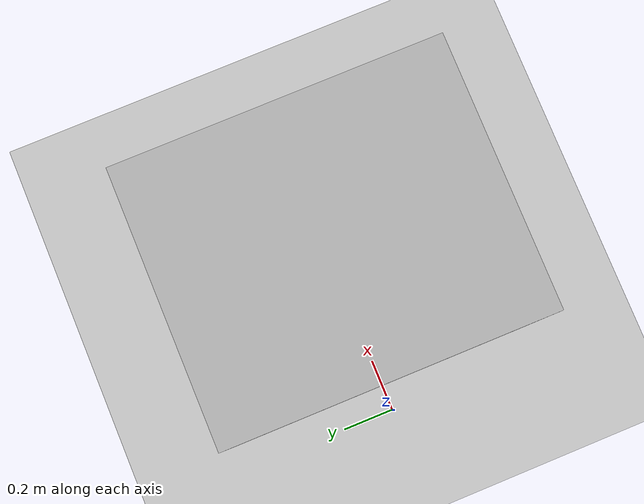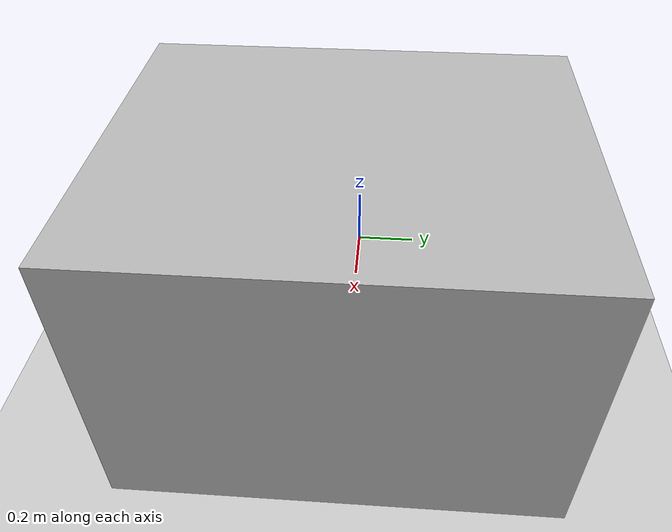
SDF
<?xml version="1.0" ?>
<sdf version="1.6">
  <world name="lab_world">

    <include>
      <uri>model://ground_plane</uri>
    </include>

    <model name="initial_stand">
      <static>true</static>
      <link name="link">
        <collision name="collision">
          <geometry>
            <box>
              <size>1.0 1.2 0.8</size>
            </box>
          </geometry>
        </collision>
        <visual name="visual">
          <geometry>
            <box>
              <size>1.0 1.2 0.8</size>
            </box>
          </geometry>
        </visual>
      </link>
      <pose>0.6 0 0.4 0 0 0</pose>
    </model>

  <light name="sun" type="directional">
  <cast_shadows>false</cast_shadows>
  <pose>0 0 10 0 0 0</pose>
  <diffuse>1 1 1 1</diffuse>
  <specular>0.2 0.2 0.2 1</specular>
  <direction>-0.5 0.5 -1</direction>
  </light>

  </world>
</sdf>
